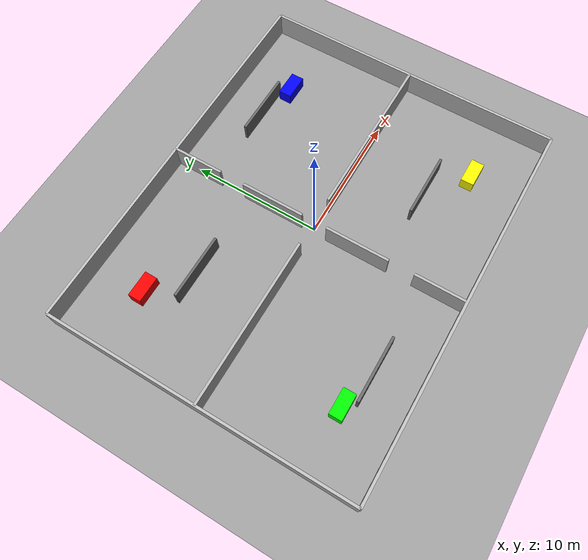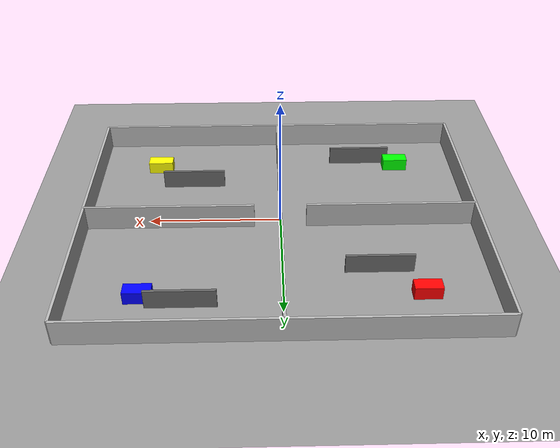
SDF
<?xml version="1.0" ?>
<sdf version="1.7">
  <world name="robot_world">

<!-- Plugins needed for the simulation                     -->
<!-- Gazebo uses system plugins to enable core features   -->

<!-- Physics engine: enables dynamics simulation
     (gravity, collisions, wheel motion, forces) -->
<plugin filename="gz-sim-physics-system"
        name="gz::sim::systems::Physics"/>

<!-- User commands: allows external commands such as
     spawning or deleting entities from ROS or CLI -->
<plugin filename="gz-sim-user-commands-system"
        name="gz::sim::systems::UserCommands"/>

<!-- Scene broadcaster: sends simulation updates to
     the GUI so objects move correctly in the viewer -->
<plugin filename="gz-sim-scene-broadcaster-system"
        name="gz::sim::systems::SceneBroadcaster"/>

<!-- Sensors system: enables simulated sensors such as
     LiDAR, cameras, IMU, etc. Without this plugin
     sensors exist but do not produce data -->
<plugin filename="gz-sim-sensors-system"
        name="gz::sim::systems::Sensors">

  <!-- Rendering engine used by sensors.
       "ogre2" is standard but WSL2 often works better with "ogre". -->
  <render_engine>ogre</render_engine>

</plugin>

    <scene>
      <ambient>0.4 0.4 0.4 1</ambient>
      <background>0.7 0.7 0.7 1</background>
    </scene>

    <light name="sun" type="directional">
      <cast_shadows>true</cast_shadows>
      <pose>0 0 10 0 0 0</pose>
      <diffuse>1 1 1 1</diffuse>
      <specular>0.5 0.5 0.5 1</specular>
      <attenuation>
        <range>100</range>
        <constant>0.9</constant>
        <linear>0.01</linear>
        <quadratic>0.001</quadratic>
      </attenuation>
      <direction>-0.5 0.5 -1</direction>
    </light>

<!-- White floor -->
<model name="white_floor">
  <static>true</static>
  <pose>0 0 -0.55 0 0 0</pose>

  <link name="floor_link">

    <collision name="collision">
      <geometry>
        <plane>
          <normal>0 0 1</normal>
          <size>40 40</size>
        </plane>
      </geometry>
      <surface>
        <friction>
          <ode>
            <mu>1.4</mu>
            <mu2>1.4</mu2>
          </ode>
        </friction>
      </surface>
    </collision>

    <visual name="visual">
      <geometry>
        <plane>
          <normal>0 0 1</normal>
          <size>40 40</size>
        </plane>
      </geometry>

      <material>
        <script>
          <uri>file://media/materials/scripts/gazebo.material</uri>
          <name>Gazebo/Grey</name>
        </script>
      </material>

    </visual>

  </link>
</model>
    <!-- OUTER WALLS -->

    <model name="wall_north">
      <static>true</static>
      <pose>0 12 0.45 0 0 0</pose>
      <link name="link">
        <collision name="collision">
          <geometry><box><size>30 0.2 2</size></box></geometry>
        </collision>
        <visual name="visual">
          <geometry><box><size>30 0.2 2</size></box></geometry>
        </visual>
      </link>
    </model>

    <model name="wall_south">
      <static>true</static>
      <pose>0 -12 0.45 0 0 0</pose>
      <link name="link">
        <collision name="collision">
          <geometry><box><size>30 0.2 2</size></box></geometry>
        </collision>
        <visual name="visual">
          <geometry><box><size>30 0.2 2</size></box></geometry>
        </visual>
      </link>
    </model>

    <model name="wall_east">
      <static>true</static>
      <pose>15 0 0.45 0 0 0</pose>
      <link name="link">
        <collision name="collision">
          <geometry><box><size>0.2 24 2</size></box></geometry>
        </collision>
        <visual name="visual">
          <geometry><box><size>0.2 24 2</size></box></geometry>
        </visual>
      </link>
    </model>

    <model name="wall_west">
      <static>true</static>
      <pose>-15 0 0.45 0 0 0</pose>
      <link name="link">
        <collision name="collision">
          <geometry><box><size>0.2 24 2</size></box></geometry>
        </collision>
        <visual name="visual">
          <geometry><box><size>0.2 24 2</size></box></geometry>
        </visual>
      </link>
    </model>

    <!-- INTERNAL WALLS -->

    <!-- Horizontal wall across the middle with one central opening -->
    <model name="mid_wall_left">
      <static>true</static>
      <pose>-8.5 0 0.45 0 0 0</pose>
      <link name="link">
        <collision name="collision">
          <geometry><box><size>13 0.2 2</size></box></geometry>
        </collision>
        <visual name="visual">
          <geometry><box><size>13 0.2 2</size></box></geometry>
          <material>
            <ambient>0.7 0.7 0.7 1</ambient>
            <diffuse>0.7 0.7 0.7 1</diffuse>
          </material>
        </visual>
      </link>
    </model>

    <model name="mid_wall_right">
      <static>true</static>
      <pose>8.5 0 0.45 0 0 0</pose>
      <link name="link">
        <collision name="collision">
          <geometry><box><size>13 0.2 2</size></box></geometry>
        </collision>
        <visual name="visual">
          <geometry><box><size>13 0.2 2</size></box></geometry>
          <material>
            <ambient>0.7 0.7 0.7 1</ambient>
            <diffuse>0.7 0.7 0.7 1</diffuse>
          </material>
        </visual>
      </link>
    </model>

    <!-- Vertical wall across the middle with offset openings -->
    <!-- top segment -->
    <model name="mid_vertical_top">
      <static>true</static>
      <pose>0 10 0.45 0 0 0</pose>
      <link name="link">
        <collision name="collision">
          <geometry><box><size>0.2 4 2</size></box></geometry>
        </collision>
        <visual name="visual">
          <geometry><box><size>0.2 4 2</size></box></geometry>
          <material>
            <ambient>0.7 0.7 0.7 1</ambient>
            <diffuse>0.7 0.7 0.7 1</diffuse>
          </material>
        </visual>
      </link>
    </model>

    <!-- upper-middle segment -->
    <model name="mid_vertical_upper">
      <static>true</static>
      <pose>0 3.5 0.45 0 0 0</pose>
      <link name="link">
        <collision name="collision">
          <geometry><box><size>0.2 5 2</size></box></geometry>
        </collision>
        <visual name="visual">
          <geometry><box><size>0.2 5 2</size></box></geometry>
          <material>
            <ambient>0.7 0.7 0.7 1</ambient>
            <diffuse>0.7 0.7 0.7 1</diffuse>
          </material>
        </visual>
      </link>
    </model>

    <!-- lower-middle segment -->
    <model name="mid_vertical_lower">
      <static>true</static>
      <pose>0 -3.5 0.45 0 0 0</pose>
      <link name="link">
        <collision name="collision">
          <geometry><box><size>0.2 5 2</size></box></geometry>
        </collision>
        <visual name="visual">
          <geometry><box><size>0.2 5 2</size></box></geometry>
          <material>
            <ambient>0.7 0.7 0.7 1</ambient>
            <diffuse>0.7 0.7 0.7 1</diffuse>
          </material>
        </visual>
      </link>
    </model>

    <!-- bottom segment -->
    <model name="mid_vertical_bottom">
      <static>true</static>
      <pose>0 -10 0.45 0 0 0</pose>
      <link name="link">
        <collision name="collision">
          <geometry><box><size>0.2 4 2</size></box></geometry>
        </collision>
        <visual name="visual">
          <geometry><box><size>0.2 4 2</size></box></geometry>
          <material>
            <ambient>0.7 0.7 0.7 1</ambient>
            <diffuse>0.7 0.7 0.7 1</diffuse>
          </material>
        </visual>
      </link>
    </model>

    <!-- LOCAL BLOCKERS / AISLE OBSTACLES -->

    <!-- Top-left quadrant blocker -->
    <model name="blocker_tl">
      <static>true</static>
      <pose>-7 5.5 0.2 0 0 0</pose>
      <link name="link">
        <collision name="collision">
          <geometry><box><size>5 0.2 1.5</size></box></geometry>
        </collision>
        <visual name="visual">
          <geometry><box><size>5 0.2 1.5</size></box></geometry>
          <material>
            <ambient>0.4 0.4 0.4 1</ambient>
            <diffuse>0.4 0.4 0.4 1</diffuse>
          </material>
        </visual>
      </link>
    </model>

    <!-- Top-right quadrant blocker -->
    <model name="blocker_tr">
      <static>true</static>
      <pose>7 8.8 0.2 0 0 0</pose>
      <link name="link">
        <collision name="collision">
          <geometry><box><size>5 0.2 1.5</size></box></geometry>
        </collision>
        <visual name="visual">
          <geometry><box><size>5 0.2 1.5</size></box></geometry>
          <material>
            <ambient>0.4 0.4 0.4 1</ambient>
            <diffuse>0.4 0.4 0.4 1</diffuse>
          </material>
        </visual>
      </link>
    </model>

    <!-- Bottom-left quadrant blocker -->
    <model name="blocker_bl">
      <static>true</static>
      <pose>-7 -8.8 0.2 0 0 0</pose>
      <link name="link">
        <collision name="collision">
          <geometry><box><size>5 0.2 1.5</size></box></geometry>
        </collision>
        <visual name="visual">
          <geometry><box><size>5 0.2 1.5</size></box></geometry>
          <material>
            <ambient>0.4 0.4 0.4 1</ambient>
            <diffuse>0.4 0.4 0.4 1</diffuse>
          </material>
        </visual>
      </link>
    </model>

    <!-- Bottom-right quadrant blocker -->
    <model name="blocker_br">
      <static>true</static>
      <pose>7 -5.5 0.2 0 0 0</pose>
      <link name="link">
        <collision name="collision">
          <geometry><box><size>5 0.2 1.5</size></box></geometry>
        </collision>
        <visual name="visual">
          <geometry><box><size>5 0.2 1.5</size></box></geometry>
          <material>
            <ambient>0.4 0.4 0.4 1</ambient>
            <diffuse>0.4 0.4 0.4 1</diffuse>
          </material>
        </visual>
      </link>
    </model>

    <!-- SHELVES / COLORED BOXES -->

    <model name="shelf_red">
      <static>true</static>
      <pose>-10 8 -0.05 0 0 0</pose>
      <link name="link">
        <collision name="collision">
          <geometry><box><size>2 1 1</size></box></geometry>
        </collision>
        <visual name="visual">
          <geometry><box><size>2 1 1</size></box></geometry>
          <material>
            <ambient>1 0 0 1</ambient>
            <diffuse>1 0 0 1</diffuse>
            <specular>0.1 0.1 0.1 1</specular>
          </material>
        </visual>
      </link>
    </model>

    <model name="shelf_blue">
      <static>true</static>
      <pose>10 8 -0.05 0 0 0</pose>
      <link name="link">
        <collision name="collision">
          <geometry><box><size>2 1 1</size></box></geometry>
        </collision>
        <visual name="visual">
          <geometry><box><size>2 1 1</size></box></geometry>
          <material>
            <ambient>0 0 1 1</ambient>
            <diffuse>0 0 1 1</diffuse>
            <specular>0.1 0.1 0.1 1</specular>
          </material>
        </visual>
      </link>
    </model>

    <model name="shelf_green">
      <static>true</static>
      <pose>-10 -8 -0.05 0 0 0</pose>
      <link name="link">
        <collision name="collision">
          <geometry><box><size>2 1 1</size></box></geometry>
        </collision>
        <visual name="visual">
          <geometry><box><size>2 1 1</size></box></geometry>
          <material>
            <ambient>0 1 0 1</ambient>
            <diffuse>0 1 0 1</diffuse>
            <specular>0.1 0.1 0.1 1</specular>
          </material>
        </visual>
      </link>
    </model>

    <model name="shelf_yellow">
      <static>true</static>
      <pose>10 -8 -0.05 0 0 0</pose>
      <link name="link">
        <collision name="collision">
          <geometry><box><size>2 1 1</size></box></geometry>
        </collision>
        <visual name="visual">
          <geometry><box><size>2 1 1</size></box></geometry>
          <material>
            <ambient>1 1 0 1</ambient>
            <diffuse>1 1 0 1</diffuse>
            <specular>0.1 0.1 0.1 1</specular>
          </material>
        </visual>
      </link>
    </model>

    <!-- Robot is spawned dynamically by ROS2 spawn_entity with joint controllers attached. -->

  </world>
</sdf>
